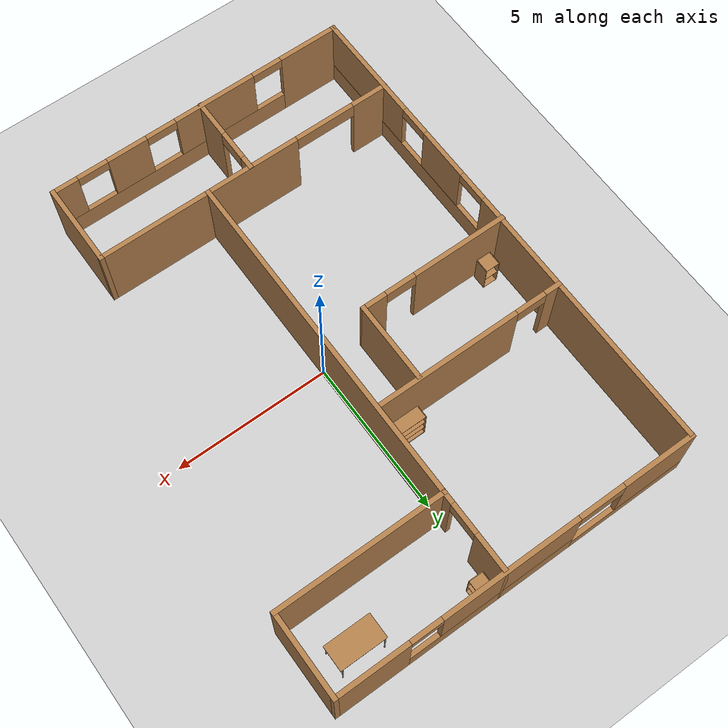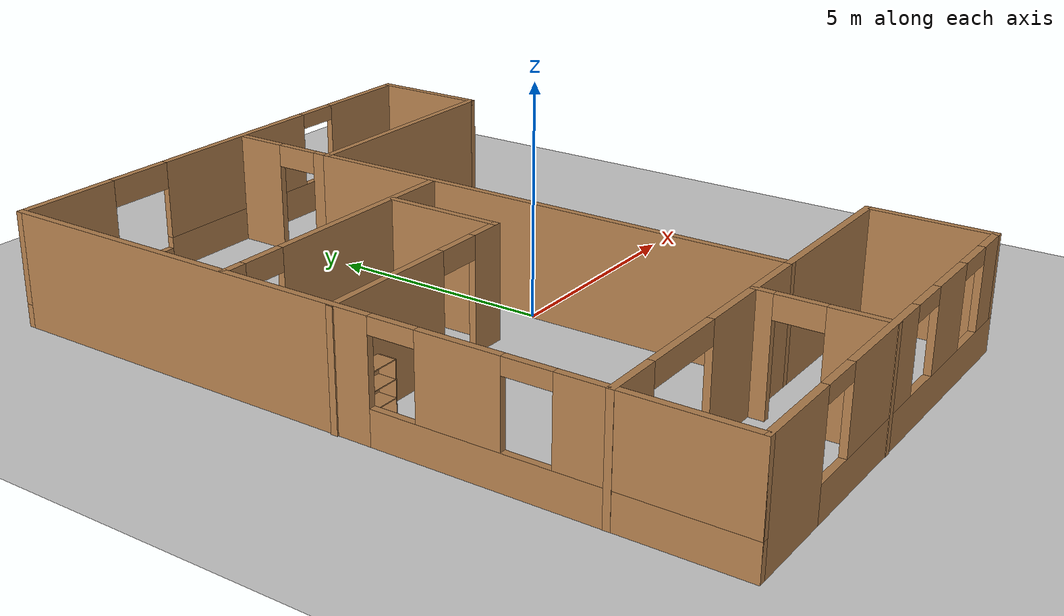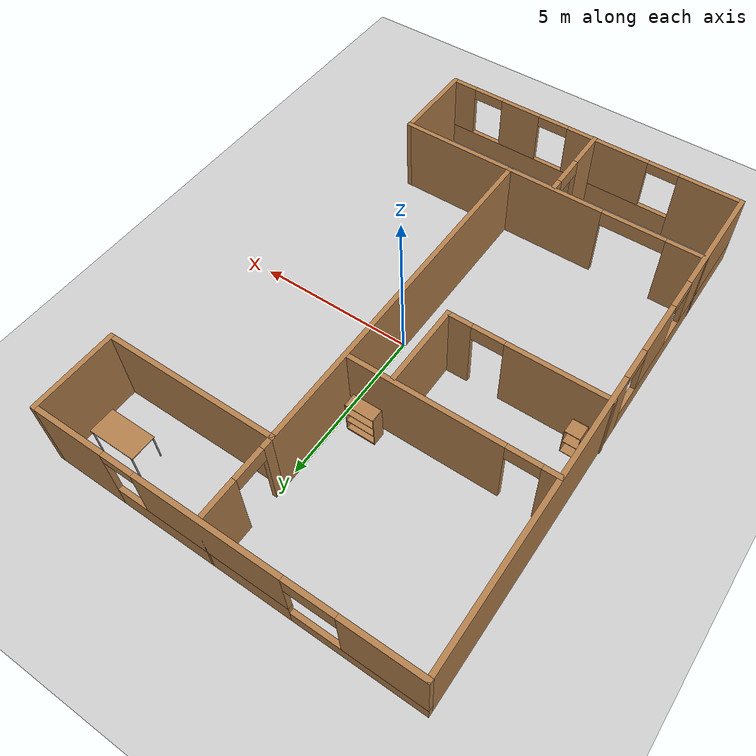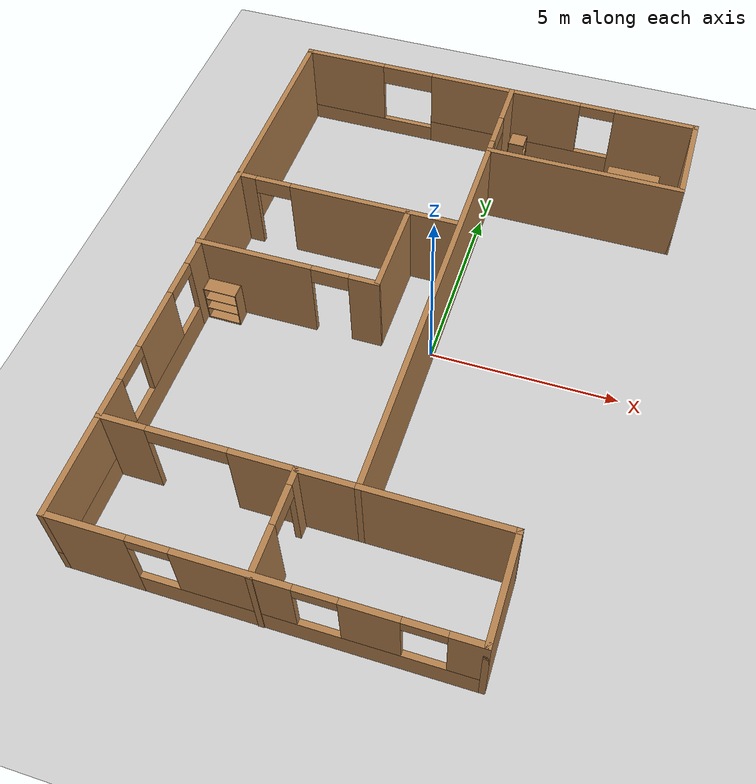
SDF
<sdf version="1.6">
 <world name="default">
  <model name="ground_plane">
   <static>1</static>
   <link name="link">
    <collision name="collision">
     <geometry><plane><normal>0 0 1</normal><size>100 100</size></plane></geometry>
     <surface><friction><ode><mu>100</mu><mu2>50</mu2></ode></friction></surface>
    </collision>
    <visual name="visual">
     <cast_shadows>0</cast_shadows>
     <geometry><plane><normal>0 0 1</normal><size>100 100</size></plane></geometry>
     <material>
      <script><uri>file://media/materials/scripts/gazebo.material</uri><name>Gazebo/Grey</name></script>
     </material>
    </visual>
   </link>
  </model>
  <model name="Building">
   <pose>-0.466 -0.083499 0 0 -0 0</pose>
   <link name="Wall_35">
    <pose>-0.859 -8.1425 0 0 -0 0</pose>
    <visual name="Wall_35_Visual_0">
     <pose>-3.97971 0 1.25 0 -0 0</pose>
     <geometry><box><size>2.04059 0.15 2.5</size></box></geometry>
     <material>
      <script><uri>file://media/materials/scripts/gazebo.material</uri><name>Gazebo/Wood</name></script>
      <ambient>0.996078 0.47451 0.0196078 1</ambient>
     </material>
     <meta><layer>0</layer></meta>
    </visual>
    <collision name="Wall_35_Collision_0">
     <geometry><box><size>2.04059 0.15 2.5</size></box></geometry>
     <pose>-3.97971 0 1.25 0 -0 0</pose>
    </collision>
    <visual name="Wall_35_Visual_1">
     <pose>1.02029 0 0.375 0 -0 0</pose>
     <geometry><box><size>7.95941 0.15 0.75</size></box></geometry>
     <material>
      <script><uri>file://media/materials/scripts/gazebo.material</uri><name>Gazebo/Wood</name></script>
      <ambient>0.996078 0.47451 0.0196078 1</ambient>
     </material>
     <meta><layer>0</layer></meta>
    </visual>
    <collision name="Wall_35_Collision_1">
     <geometry><box><size>7.95941 0.15 0.75</size></box></geometry>
     <pose>1.02029 0 0.375 0 -0 0</pose>
    </collision>
    <visual name="Wall_35_Visual_2">
     <pose>-0.589488 0 1.625 0 -0 0</pose>
     <geometry><box><size>2.73985 0.15 1.75</size></box></geometry>
     <material>
      <script><uri>file://media/materials/scripts/gazebo.material</uri><name>Gazebo/Wood</name></script>
      <ambient>0.996078 0.47451 0.0196078 1</ambient>
     </material>
     <meta><layer>0</layer></meta>
    </visual>
    <collision name="Wall_35_Collision_2">
     <geometry><box><size>2.73985 0.15 1.75</size></box></geometry>
     <pose>-0.589488 0 1.625 0 -0 0</pose>
    </collision>
    <visual name="Wall_35_Visual_3">
     <pose>2.45057 0 1.625 0 -0 0</pose>
     <geometry><box><size>1.34027 0.15 1.75</size></box></geometry>
     <material>
      <script><uri>file://media/materials/scripts/gazebo.material</uri><name>Gazebo/Wood</name></script>
      <ambient>0.996078 0.47451 0.0196078 1</ambient>
     </material>
     <meta><layer>0</layer></meta>
    </visual>
    <collision name="Wall_35_Collision_3">
     <geometry><box><size>1.34027 0.15 1.75</size></box></geometry>
     <pose>2.45057 0 1.625 0 -0 0</pose>
    </collision>
    <visual name="Wall_35_Visual_4">
     <pose>4.56035 0 1.625 0 -0 0</pose>
     <geometry><box><size>0.879297 0.15 1.75</size></box></geometry>
     <material>
      <script><uri>file://media/materials/scripts/gazebo.material</uri><name>Gazebo/Wood</name></script>
      <ambient>0.996078 0.47451 0.0196078 1</ambient>
     </material>
     <meta><layer>0</layer></meta>
    </visual>
    <collision name="Wall_35_Collision_4">
     <geometry><box><size>0.879297 0.15 1.75</size></box></geometry>
     <pose>4.56035 0 1.625 0 -0 0</pose>
    </collision>
    <visual name="Wall_35_Visual_5">
     <pose>-2.45941 0 2.325 0 -0 0</pose>
     <geometry><box><size>1 0.15 0.35</size></box></geometry>
     <material>
      <script><uri>file://media/materials/scripts/gazebo.material</uri><name>Gazebo/Wood</name></script>
      <ambient>0.996078 0.47451 0.0196078 1</ambient>
     </material>
     <meta><layer>0</layer></meta>
    </visual>
    <collision name="Wall_35_Collision_5">
     <geometry><box><size>1 0.15 0.35</size></box></geometry>
     <pose>-2.45941 0 2.325 0 -0 0</pose>
    </collision>
    <visual name="Wall_35_Visual_6">
     <pose>1.28044 0 2.325 0 -0 0</pose>
     <geometry><box><size>1 0.15 0.35</size></box></geometry>
     <material>
      <script><uri>file://media/materials/scripts/gazebo.material</uri><name>Gazebo/Wood</name></script>
      <ambient>0.996078 0.47451 0.0196078 1</ambient>
     </material>
     <meta><layer>0</layer></meta>
    </visual>
    <collision name="Wall_35_Collision_6">
     <geometry><box><size>1 0.15 0.35</size></box></geometry>
     <pose>1.28044 0 2.325 0 -0 0</pose>
    </collision>
    <visual name="Wall_35_Visual_7">
     <pose>3.6207 0 2.325 0 -0 0</pose>
     <geometry><box><size>1 0.15 0.35</size></box></geometry>
     <material>
      <script><uri>file://media/materials/scripts/gazebo.material</uri><name>Gazebo/Wood</name></script>
      <ambient>0.996078 0.47451 0.0196078 1</ambient>
     </material>
     <meta><layer>0</layer></meta>
    </visual>
    <collision name="Wall_35_Collision_7">
     <geometry><box><size>1 0.15 0.35</size></box></geometry>
     <pose>3.6207 0 2.325 0 -0 0</pose>
    </collision>
   </link>
   <link name="Wall_36">
    <collision name="Wall_36_Collision">
     <geometry><box><size>2.75 0.15 2.5</size></box></geometry>
     <pose>0 0 1.25 0 -0 0</pose>
    </collision>
    <visual name="Wall_36_Visual">
     <pose>0 0 1.25 0 -0 0</pose>
     <geometry><box><size>2.75 0.15 2.5</size></box></geometry>
     <material>
      <script><uri>file://media/materials/scripts/gazebo.material</uri><name>Gazebo/Wood</name></script>
      <ambient>0.996078 0.47451 0.0196078 1</ambient>
     </material>
     <meta><layer>0</layer></meta>
    </visual>
    <pose>4.066 -6.8425 0 0 -0 1.5708</pose>
   </link>
   <link name="Wall_37">
    <collision name="Wall_37_Collision">
     <geometry><box><size>3.75 0.15 2.5</size></box></geometry>
     <pose>0 0 1.25 0 -0 0</pose>
    </collision>
    <visual name="Wall_37_Visual">
     <pose>0 0 1.25 0 -0 0</pose>
     <geometry><box><size>3.75 0.15 2.5</size></box></geometry>
     <material>
      <script><uri>file://media/materials/scripts/gazebo.material</uri><name>Gazebo/Wood</name></script>
      <ambient>0.996078 0.47451 0.0196078 1</ambient>
     </material>
     <meta><layer>0</layer></meta>
    </visual>
    <pose>2.266 -5.5425 0 0 -0 3.14159</pose>
   </link>
   <link name="Wall_38">
    <collision name="Wall_38_Collision">
     <geometry><box><size>11.25 0.15 2.5</size></box></geometry>
     <pose>0 0 1.25 0 -0 0</pose>
    </collision>
    <visual name="Wall_38_Visual">
     <pose>0 0 1.25 0 -0 0</pose>
     <geometry><box><size>11.25 0.15 2.5</size></box></geometry>
     <material>
      <script><uri>file://media/materials/scripts/gazebo.material</uri><name>Gazebo/Wood</name></script>
      <ambient>0.996078 0.47451 0.0196078 1</ambient>
     </material>
     <meta><layer>0</layer></meta>
    </visual>
    <pose>0.466 0.007499 0 0 -0 1.5708</pose>
   </link>
   <link name="Wall_39">
    <collision name="Wall_39_Collision">
     <geometry><box><size>5.5 0.15 2.5</size></box></geometry>
     <pose>0 0 1.25 0 -0 0</pose>
    </collision>
    <visual name="Wall_39_Visual">
     <pose>0 0 1.25 0 -0 0</pose>
     <geometry><box><size>5.5 0.15 2.5</size></box></geometry>
     <material>
      <script><uri>file://media/materials/scripts/gazebo.material</uri><name>Gazebo/Wood</name></script>
      <ambient>0.996078 0.47451 0.0196078 1</ambient>
     </material>
     <meta><layer>0</layer></meta>
    </visual>
    <pose>3.141 5.5575 0 0 -0 0</pose>
   </link>
   <link name="Wall_40">
    <collision name="Wall_40_Collision">
     <geometry><box><size>2.75 0.15 2.5</size></box></geometry>
     <pose>0 0 1.25 0 -0 0</pose>
    </collision>
    <visual name="Wall_40_Visual">
     <pose>0 0 1.25 0 -0 0</pose>
     <geometry><box><size>2.75 0.15 2.5</size></box></geometry>
     <material>
      <script><uri>file://media/materials/scripts/gazebo.material</uri><name>Gazebo/Wood</name></script>
      <ambient>0.996078 0.47451 0.0196078 1</ambient>
     </material>
     <meta><layer>0</layer></meta>
    </visual>
    <pose>5.816 6.8575 0 0 -0 1.5708</pose>
   </link>
   <link name="Wall_41">
    <pose>0.016 8.1575 0 0 -0 3.14159</pose>
    <visual name="Wall_41_Visual_0">
     <pose>-4.68142 0 1.25 0 -0 0</pose>
     <geometry><box><size>2.38717 0.15 2.5</size></box></geometry>
     <material>
      <script><uri>file://media/materials/scripts/gazebo.material</uri><name>Gazebo/Wood</name></script>
      <ambient>0.996078 0.47451 0.0196078 1</ambient>
     </material>
     <meta><layer>0</layer></meta>
    </visual>
    <collision name="Wall_41_Collision_0">
     <geometry><box><size>2.38717 0.15 2.5</size></box></geometry>
     <pose>-4.68142 0 1.25 0 -0 0</pose>
    </collision>
    <visual name="Wall_41_Visual_1">
     <pose>-0.76125 0 0.375 0 -0 0</pose>
     <geometry><box><size>5.45316 0.15 0.75</size></box></geometry>
     <material>
      <script><uri>file://media/materials/scripts/gazebo.material</uri><name>Gazebo/Wood</name></script>
      <ambient>0.996078 0.47451 0.0196078 1</ambient>
     </material>
     <meta><layer>0</layer></meta>
    </visual>
    <collision name="Wall_41_Collision_1">
     <geometry><box><size>5.45316 0.15 0.75</size></box></geometry>
     <pose>-0.76125 0 0.375 0 -0 0</pose>
    </collision>
    <visual name="Wall_41_Visual_2">
     <pose>3.92016 0 0.25 0 -0 0</pose>
     <geometry><box><size>3.90967 0.15 0.5</size></box></geometry>
     <material>
      <script><uri>file://media/materials/scripts/gazebo.material</uri><name>Gazebo/Wood</name></script>
      <ambient>0.996078 0.47451 0.0196078 1</ambient>
     </material>
     <meta><layer>0</layer></meta>
    </visual>
    <collision name="Wall_41_Collision_2">
     <geometry><box><size>3.90967 0.15 0.5</size></box></geometry>
     <pose>3.92016 0 0.25 0 -0 0</pose>
    </collision>
    <visual name="Wall_41_Visual_3">
     <pose>4.67016 0 1.5 0 -0 0</pose>
     <geometry><box><size>2.40967 0.15 2</size></box></geometry>
     <material>
      <script><uri>file://media/materials/scripts/gazebo.material</uri><name>Gazebo/Wood</name></script>
      <ambient>0.996078 0.47451 0.0196078 1</ambient>
     </material>
     <meta><layer>0</layer></meta>
    </visual>
    <collision name="Wall_41_Collision_3">
     <geometry><box><size>2.40967 0.15 2</size></box></geometry>
     <pose>4.67016 0 1.5 0 -0 0</pose>
    </collision>
    <visual name="Wall_41_Visual_4">
     <pose>-0.26125 0 1.625 0 -0 0</pose>
     <geometry><box><size>4.45316 0.15 1.75</size></box></geometry>
     <material>
      <script><uri>file://media/materials/scripts/gazebo.material</uri><name>Gazebo/Wood</name></script>
      <ambient>0.996078 0.47451 0.0196078 1</ambient>
     </material>
     <meta><layer>0</layer></meta>
    </visual>
    <collision name="Wall_41_Collision_4">
     <geometry><box><size>4.45316 0.15 1.75</size></box></geometry>
     <pose>-0.26125 0 1.625 0 -0 0</pose>
    </collision>
    <visual name="Wall_41_Visual_5">
     <pose>2.71533 0 2.2 0 -0 0</pose>
     <geometry><box><size>1.5 0.15 0.6</size></box></geometry>
     <material>
      <script><uri>file://media/materials/scripts/gazebo.material</uri><name>Gazebo/Wood</name></script>
      <ambient>0.996078 0.47451 0.0196078 1</ambient>
     </material>
     <meta><layer>0</layer></meta>
    </visual>
    <collision name="Wall_41_Collision_5">
     <geometry><box><size>1.5 0.15 0.6</size></box></geometry>
     <pose>2.71533 0 2.2 0 -0 0</pose>
    </collision>
    <visual name="Wall_41_Visual_6">
     <pose>-2.98783 0 2.325 0 -0 0</pose>
     <geometry><box><size>1 0.15 0.35</size></box></geometry>
     <material>
      <script><uri>file://media/materials/scripts/gazebo.material</uri><name>Gazebo/Wood</name></script>
      <ambient>0.996078 0.47451 0.0196078 1</ambient>
     </material>
     <meta><layer>0</layer></meta>
    </visual>
    <collision name="Wall_41_Collision_6">
     <geometry><box><size>1 0.15 0.35</size></box></geometry>
     <pose>-2.98783 0 2.325 0 -0 0</pose>
    </collision>
   </link>
   <link name="Wall_42">
    <pose>-5.784 0.007499 0 0 -0 -1.5708</pose>
    <visual name="Wall_42_Visual_0">
     <pose>-3.729 0 1.25 0 -0 0</pose>
     <geometry><box><size>8.992 0.15 2.5</size></box></geometry>
     <material>
      <script><uri>file://media/materials/scripts/gazebo.material</uri><name>Gazebo/Wood</name></script>
      <ambient>0.996078 0.47451 0.0196078 1</ambient>
     </material>
     <meta><layer>0</layer></meta>
    </visual>
    <collision name="Wall_42_Collision_0">
     <geometry><box><size>8.992 0.15 2.5</size></box></geometry>
     <pose>-3.729 0 1.25 0 -0 0</pose>
    </collision>
    <visual name="Wall_42_Visual_1">
     <pose>4.496 0 0.375 0 -0 0</pose>
     <geometry><box><size>7.458 0.15 0.75</size></box></geometry>
     <material>
      <script><uri>file://media/materials/scripts/gazebo.material</uri><name>Gazebo/Wood</name></script>
      <ambient>0.996078 0.47451 0.0196078 1</ambient>
     </material>
     <meta><layer>0</layer></meta>
    </visual>
    <collision name="Wall_42_Collision_1">
     <geometry><box><size>7.458 0.15 0.75</size></box></geometry>
     <pose>4.496 0 0.375 0 -0 0</pose>
    </collision>
    <visual name="Wall_42_Visual_2">
     <pose>2.63915 0 1.625 0 -0 0</pose>
     <geometry><box><size>1.7443 0.15 1.75</size></box></geometry>
     <material>
      <script><uri>file://media/materials/scripts/gazebo.material</uri><name>Gazebo/Wood</name></script>
      <ambient>0.996078 0.47451 0.0196078 1</ambient>
     </material>
     <meta><layer>0</layer></meta>
    </visual>
    <collision name="Wall_42_Collision_2">
     <geometry><box><size>1.7443 0.15 1.75</size></box></geometry>
     <pose>2.63915 0 1.625 0 -0 0</pose>
    </collision>
    <visual name="Wall_42_Visual_3">
     <pose>6.36815 0 1.625 0 -0 0</pose>
     <geometry><box><size>3.7137 0.15 1.75</size></box></geometry>
     <material>
      <script><uri>file://media/materials/scripts/gazebo.material</uri><name>Gazebo/Wood</name></script>
      <ambient>0.996078 0.47451 0.0196078 1</ambient>
     </material>
     <meta><layer>0</layer></meta>
    </visual>
    <collision name="Wall_42_Collision_3">
     <geometry><box><size>3.7137 0.15 1.75</size></box></geometry>
     <pose>6.36815 0 1.625 0 -0 0</pose>
    </collision>
    <visual name="Wall_42_Visual_4">
     <pose>1.267 0 2.325 0 -0 0</pose>
     <geometry><box><size>1 0.15 0.35</size></box></geometry>
     <material>
      <script><uri>file://media/materials/scripts/gazebo.material</uri><name>Gazebo/Wood</name></script>
      <ambient>0.996078 0.47451 0.0196078 1</ambient>
     </material>
     <meta><layer>0</layer></meta>
    </visual>
    <collision name="Wall_42_Collision_4">
     <geometry><box><size>1 0.15 0.35</size></box></geometry>
     <pose>1.267 0 2.325 0 -0 0</pose>
    </collision>
    <visual name="Wall_42_Visual_5">
     <pose>4.0113 0 2.325 0 -0 0</pose>
     <geometry><box><size>1 0.15 0.35</size></box></geometry>
     <material>
      <script><uri>file://media/materials/scripts/gazebo.material</uri><name>Gazebo/Wood</name></script>
      <ambient>0.996078 0.47451 0.0196078 1</ambient>
     </material>
     <meta><layer>0</layer></meta>
    </visual>
    <collision name="Wall_42_Collision_5">
     <geometry><box><size>1 0.15 0.35</size></box></geometry>
     <pose>4.0113 0 2.325 0 -0 0</pose>
    </collision>
   </link>
   <link name="Wall_44">
    <pose>0.466 6.8575 0 0 -0 1.5708</pose>
    <visual name="Wall_44_Visual_0">
     <pose>-1.15301 0 1.25 0 -0 0</pose>
     <geometry><box><size>0.443977 0.15 2.5</size></box></geometry>
     <material>
      <script><uri>file://media/materials/scripts/gazebo.material</uri><name>Gazebo/Wood</name></script>
      <ambient>0.996078 0.47451 0.0196078 1</ambient>
     </material>
     <meta><layer>0</layer></meta>
    </visual>
    <collision name="Wall_44_Collision_0">
     <geometry><box><size>0.443977 0.15 2.5</size></box></geometry>
     <pose>-1.15301 0 1.25 0 -0 0</pose>
    </collision>
    <visual name="Wall_44_Visual_1">
     <pose>0.721988 0 1.25 0 -0 0</pose>
     <geometry><box><size>1.30602 0.15 2.5</size></box></geometry>
     <material>
      <script><uri>file://media/materials/scripts/gazebo.material</uri><name>Gazebo/Wood</name></script>
      <ambient>0.996078 0.47451 0.0196078 1</ambient>
     </material>
     <meta><layer>0</layer></meta>
    </visual>
    <collision name="Wall_44_Collision_1">
     <geometry><box><size>1.30602 0.15 2.5</size></box></geometry>
     <pose>0.721988 0 1.25 0 -0 0</pose>
    </collision>
    <visual name="Wall_44_Visual_2">
     <pose>-0.431023 0 2.25 0 -0 0</pose>
     <geometry><box><size>1 0.15 0.5</size></box></geometry>
     <material>
      <script><uri>file://media/materials/scripts/gazebo.material</uri><name>Gazebo/Wood</name></script>
      <ambient>0.996078 0.47451 0.0196078 1</ambient>
     </material>
     <meta><layer>0</layer></meta>
    </visual>
    <collision name="Wall_44_Collision_2">
     <geometry><box><size>1 0.15 0.5</size></box></geometry>
     <pose>-0.431023 0 2.25 0 -0 0</pose>
    </collision>
   </link>
   <link name="Wall_46">
    <pose>-2.733 2.6255 0 0 -0 0</pose>
    <visual name="Wall_46_Visual_0">
     <pose>-2.84077 0 1.25 0 -0 0</pose>
     <geometry><box><size>0.56845 0.15 2.5</size></box></geometry>
     <material>
      <script><uri>file://media/materials/scripts/gazebo.material</uri><name>Gazebo/Wood</name></script>
      <ambient>0.996078 0.47451 0.0196078 1</ambient>
     </material>
     <meta><layer>0</layer></meta>
    </visual>
    <collision name="Wall_46_Collision_0">
     <geometry><box><size>0.56845 0.15 2.5</size></box></geometry>
     <pose>-2.84077 0 1.25 0 -0 0</pose>
    </collision>
    <visual name="Wall_46_Visual_1">
     <pose>0.784225 0 1.25 0 -0 0</pose>
     <geometry><box><size>4.68155 0.15 2.5</size></box></geometry>
     <material>
      <script><uri>file://media/materials/scripts/gazebo.material</uri><name>Gazebo/Wood</name></script>
      <ambient>0.996078 0.47451 0.0196078 1</ambient>
     </material>
     <meta><layer>0</layer></meta>
    </visual>
    <collision name="Wall_46_Collision_1">
     <geometry><box><size>4.68155 0.15 2.5</size></box></geometry>
     <pose>0.784225 0 1.25 0 -0 0</pose>
    </collision>
    <visual name="Wall_46_Visual_2">
     <pose>-2.05655 0 2.25 0 -0 0</pose>
     <geometry><box><size>1 0.15 0.5</size></box></geometry>
     <material>
      <script><uri>file://media/materials/scripts/gazebo.material</uri><name>Gazebo/Wood</name></script>
      <ambient>0.996078 0.47451 0.0196078 1</ambient>
     </material>
     <meta><layer>0</layer></meta>
    </visual>
    <collision name="Wall_46_Collision_2">
     <geometry><box><size>1 0.15 0.5</size></box></geometry>
     <pose>-2.05655 0 2.25 0 -0 0</pose>
    </collision>
   </link>
   <link name="Wall_48">
    <pose>-3.391 0.046499 0 0 -0 0</pose>
    <visual name="Wall_48_Visual_0">
     <pose>-0.915348 0 1.25 0 -0 0</pose>
     <geometry><box><size>3.1693 0.15 2.5</size></box></geometry>
     <material>
      <script><uri>file://media/materials/scripts/gazebo.material</uri><name>Gazebo/Wood</name></script>
      <ambient>0.996078 0.47451 0.0196078 1</ambient>
     </material>
     <meta><layer>0</layer></meta>
    </visual>
    <collision name="Wall_48_Collision_0">
     <geometry><box><size>3.1693 0.15 2.5</size></box></geometry>
     <pose>-0.915348 0 1.25 0 -0 0</pose>
    </collision>
    <visual name="Wall_48_Visual_1">
     <pose>2.08465 0 1.25 0 -0 0</pose>
     <geometry><box><size>0.830696 0.15 2.5</size></box></geometry>
     <material>
      <script><uri>file://media/materials/scripts/gazebo.material</uri><name>Gazebo/Wood</name></script>
      <ambient>0.996078 0.47451 0.0196078 1</ambient>
     </material>
     <meta><layer>0</layer></meta>
    </visual>
    <collision name="Wall_48_Collision_1">
     <geometry><box><size>0.830696 0.15 2.5</size></box></geometry>
     <pose>2.08465 0 1.25 0 -0 0</pose>
    </collision>
    <visual name="Wall_48_Visual_2">
     <pose>1.1693 0 2.25 0 -0 0</pose>
     <geometry><box><size>1 0.15 0.5</size></box></geometry>
     <material>
      <script><uri>file://media/materials/scripts/gazebo.material</uri><name>Gazebo/Wood</name></script>
      <ambient>0.996078 0.47451 0.0196078 1</ambient>
     </material>
     <meta><layer>0</layer></meta>
    </visual>
    <collision name="Wall_48_Collision_2">
     <geometry><box><size>1 0.15 0.5</size></box></geometry>
     <pose>1.1693 0 2.25 0 -0 0</pose>
    </collision>
   </link>
   <link name="Wall_49">
    <collision name="Wall_49_Collision">
     <geometry><box><size>2.66373 0.15 2.5</size></box></geometry>
     <pose>0 0 1.25 0 -0 0</pose>
    </collision>
    <visual name="Wall_49_Visual">
     <pose>0 0 1.25 0 -0 0</pose>
     <geometry><box><size>2.66373 0.15 2.5</size></box></geometry>
     <material>
      <script><uri>file://media/materials/scripts/gazebo.material</uri><name>Gazebo/Wood</name></script>
      <ambient>0.996078 0.47451 0.0196078 1</ambient>
     </material>
     <meta><layer>0</layer></meta>
    </visual>
    <pose>-0.964 1.3035 0 0 -0 1.5692</pose>
   </link>
   <link name="Wall_51">
    <pose>-2.6615 -5.5425 0 0 -0 0</pose>
    <visual name="Wall_51_Visual_0">
     <pose>-2.57774 0 1.25 0 -0 0</pose>
     <geometry><box><size>1.24958 0.15 2.5</size></box></geometry>
     <material>
      <script><uri>file://media/materials/scripts/gazebo.material</uri><name>Gazebo/Wood</name></script>
      <ambient>0.996078 0.47451 0.0196078 1</ambient>
     </material>
     <meta><layer>0</layer></meta>
    </visual>
    <collision name="Wall_51_Collision_0">
     <geometry><box><size>1.24958 0.15 2.5</size></box></geometry>
     <pose>-2.57774 0 1.25 0 -0 0</pose>
    </collision>
    <visual name="Wall_51_Visual_1">
     <pose>1.62479 0 1.25 0 -0 0</pose>
     <geometry><box><size>3.15547 0.15 2.5</size></box></geometry>
     <material>
      <script><uri>file://media/materials/scripts/gazebo.material</uri><name>Gazebo/Wood</name></script>
      <ambient>0.996078 0.47451 0.0196078 1</ambient>
     </material>
     <meta><layer>0</layer></meta>
    </visual>
    <collision name="Wall_51_Collision_1">
     <geometry><box><size>3.15547 0.15 2.5</size></box></geometry>
     <pose>1.62479 0 1.25 0 -0 0</pose>
    </collision>
    <visual name="Wall_51_Visual_2">
     <pose>-0.952945 0 2.25 0 -0 0</pose>
     <geometry><box><size>2 0.15 0.5</size></box></geometry>
     <material>
      <script><uri>file://media/materials/scripts/gazebo.material</uri><name>Gazebo/Wood</name></script>
      <ambient>0.996078 0.47451 0.0196078 1</ambient>
     </material>
     <meta><layer>0</layer></meta>
    </visual>
    <collision name="Wall_51_Collision_2">
     <geometry><box><size>2 0.15 0.5</size></box></geometry>
     <pose>-0.952945 0 2.25 0 -0 0</pose>
    </collision>
   </link>
   <link name="Wall_53">
    <pose>-0.99 -6.8575 0 0 -0 -1.5708</pose>
    <visual name="Wall_53_Visual_0">
     <pose>-1.14437 0 1.25 0 -0 0</pose>
     <geometry><box><size>0.461266 0.15 2.5</size></box></geometry>
     <material>
      <script><uri>file://media/materials/scripts/gazebo.material</uri><name>Gazebo/Wood</name></script>
      <ambient>0.996078 0.47451 0.0196078 1</ambient>
     </material>
     <meta><layer>0</layer></meta>
    </visual>
    <collision name="Wall_53_Collision_0">
     <geometry><box><size>0.461266 0.15 2.5</size></box></geometry>
     <pose>-1.14437 0 1.25 0 -0 0</pose>
    </collision>
    <visual name="Wall_53_Visual_1">
     <pose>0.730633 0 1.25 0 -0 0</pose>
     <geometry><box><size>1.28873 0.15 2.5</size></box></geometry>
     <material>
      <script><uri>file://media/materials/scripts/gazebo.material</uri><name>Gazebo/Wood</name></script>
      <ambient>0.996078 0.47451 0.0196078 1</ambient>
     </material>
     <meta><layer>0</layer></meta>
    </visual>
    <collision name="Wall_53_Collision_1">
     <geometry><box><size>1.28873 0.15 2.5</size></box></geometry>
     <pose>0.730633 0 1.25 0 -0 0</pose>
    </collision>
    <visual name="Wall_53_Visual_2">
     <pose>-0.413734 0 2.25 0 -0 0</pose>
     <geometry><box><size>1 0.15 0.5</size></box></geometry>
     <material>
      <script><uri>file://media/materials/scripts/gazebo.material</uri><name>Gazebo/Wood</name></script>
      <ambient>0.996078 0.47451 0.0196078 1</ambient>
     </material>
     <meta><layer>0</layer></meta>
    </visual>
    <collision name="Wall_53_Collision_2">
     <geometry><box><size>1 0.15 0.5</size></box></geometry>
     <pose>-0.413734 0 2.25 0 -0 0</pose>
    </collision>
   </link>
   <static>1</static>
  </model>
  <model name="cabinet_0">
   <static>1</static>
   <link name="cabinet_bottom_plate">
    <inertial>
     <pose>0 0 -1 0 -0 0</pose>
     <inertia><ixx>2.05</ixx><ixy>0</ixy><ixz>0</ixz><iyy>2.05</iyy><iyz>0</iyz><izz>2.05</izz></inertia>
     <mass>25</mass>
    </inertial>
    <collision name="cabinet_bottom_plate_geom">
     <pose>0 0 0.01 0 -0 0</pose>
     <geometry><box><size>0.45 0.45 0.02</size></box></geometry>
    </collision>
    <visual name="cabinet_bottom_plate_geom_visual">
     <pose>0 0 0.01 0 -0 0</pose>
     <geometry><box><size>0.45 0.45 0.02</size></box></geometry>
     <material>
      <script><uri>file://media/materials/scripts/gazebo.material</uri><name>Gazebo/Wood</name></script>
     </material>
    </visual>
    <collision name="cabinet_bottom_plate_geom_cabinet_back_plate">
     <pose>0.235 0 0.51 0 -0 0</pose>
     <geometry><box><size>0.02 0.45 1.02</size></box></geometry>
    </collision>
    <visual name="cabinet_bottom_plate_geom_cabinet_back_plate_visual">
     <pose>0.235 0 0.51 0 -0 0</pose>
     <geometry><box><size>0.02 0.45 1.02</size></box></geometry>
     <material>
      <script><uri>file://media/materials/scripts/gazebo.material</uri><name>Gazebo/Wood</name></script>
     </material>
    </visual>
    <collision name="cabinet_bottom_plate_geom_cabinet_left_plate">
     <pose>0 0.235 0.51 0 -0 0</pose>
     <geometry><box><size>0.45 0.02 1.02</size></box></geometry>
    </collision>
    <visual name="cabinet_bottom_plate_geom_cabinet_left_plate_visual">
     <pose>0 0.235 0.51 0 -0 0</pose>
     <geometry><box><size>0.45 0.02 1.02</size></box></geometry>
     <material>
      <script><uri>file://media/materials/scripts/gazebo.material</uri><name>Gazebo/Wood</name></script>
     </material>
    </visual>
    <collision name="cabinet_bottom_plate_geom_cabinet_middle_plate">
     <pose>0 0 0.51 0 -0 0</pose>
     <geometry><box><size>0.45 0.45 0.02</size></box></geometry>
    </collision>
    <visual name="cabinet_bottom_plate_geom_cabinet_middle_plate_visual">
     <pose>0 0 0.51 0 -0 0</pose>
     <geometry><box><size>0.45 0.45 0.02</size></box></geometry>
     <material>
      <script><uri>file://media/materials/scripts/gazebo.material</uri><name>Gazebo/Wood</name></script>
     </material>
    </visual>
    <collision name="cabinet_bottom_plate_geom_cabinet_right_plate">
     <pose>0 -0.235 0.51 0 -0 0</pose>
     <geometry><box><size>0.45 0.02 1.02</size></box></geometry>
    </collision>
    <visual name="cabinet_bottom_plate_geom_cabinet_right_plate_visual">
     <pose>0 -0.235 0.51 0 -0 0</pose>
     <geometry><box><size>0.45 0.02 1.02</size></box></geometry>
     <material>
      <script><uri>file://media/materials/scripts/gazebo.material</uri><name>Gazebo/Wood</name></script>
     </material>
    </visual>
    <collision name="cabinet_bottom_plate_geom_cabinet_top_plate">
     <pose>0 0 1.01 0 -0 0</pose>
     <geometry><box><size>0.45 0.45 0.02</size></box></geometry>
    </collision>
    <visual name="cabinet_bottom_plate_geom_cabinet_top_plate_visual">
     <pose>0 0 1.01 0 -0 0</pose>
     <geometry><box><size>0.45 0.45 0.02</size></box></geometry>
     <material>
      <script><uri>file://media/materials/scripts/gazebo.material</uri><name>Gazebo/Wood</name></script>
     </material>
    </visual>
   </link>
   <pose>-5.67033 0.316725 0 0 0 -1.57529</pose>
  </model>
  <model name="bookshelf">
   <static>1</static>
   <link name="link">
    <inertial><mass>1</mass></inertial>
    <collision name="back">
     <pose>0 0.005 0.6 0 -0 0</pose>
     <geometry><box><size>0.9 0.01 1.2</size></box></geometry>
    </collision>
    <visual name="visual1">
     <pose>0 0.005 0.6 0 -0 0</pose>
     <geometry><box><size>0.9 0.01 1.2</size></box></geometry>
     <material>
      <script><uri>file://media/materials/scripts/gazebo.material</uri><name>Gazebo/Wood</name></script>
     </material>
    </visual>
    <collision name="left_side">
     <pose>0.45 -0.195 0.6 0 -0 0</pose>
     <geometry><box><size>0.02 0.4 1.2</size></box></geometry>
    </collision>
    <visual name="visual2">
     <pose>0.45 -0.195 0.6 0 -0 0</pose>
     <geometry><box><size>0.02 0.4 1.2</size></box></geometry>
     <material>
      <script><uri>file://media/materials/scripts/gazebo.material</uri><name>Gazebo/Wood</name></script>
     </material>
    </visual>
    <collision name="right_side">
     <pose>-0.45 -0.195 0.6 0 -0 0</pose>
     <geometry><box><size>0.02 0.4 1.2</size></box></geometry>
    </collision>
    <visual name="visual3">
     <pose>-0.45 -0.195 0.6 0 -0 0</pose>
     <geometry><box><size>0.02 0.4 1.2</size></box></geometry>
     <material>
      <script><uri>file://media/materials/scripts/gazebo.material</uri><name>Gazebo/Wood</name></script>
     </material>
    </visual>
    <collision name="bottom">
     <pose>0 -0.195 0.03 0 -0 0</pose>
     <geometry><box><size>0.88 0.4 0.06</size></box></geometry>
    </collision>
    <visual name="visual4">
     <pose>0 -0.195 0.03 0 -0 0</pose>
     <geometry><box><size>0.88 0.4 0.06</size></box></geometry>
     <material>
      <script><uri>file://media/materials/scripts/gazebo.material</uri><name>Gazebo/Wood</name></script>
     </material>
    </visual>
    <collision name="top">
     <pose>0 -0.195 1.19 0 -0 0</pose>
     <geometry><box><size>0.88 0.4 0.02</size></box></geometry>
    </collision>
    <visual name="visual5">
     <pose>0 -0.195 1.19 0 -0 0</pose>
     <geometry><box><size>0.88 0.4 0.02</size></box></geometry>
     <material>
      <script><uri>file://media/materials/scripts/gazebo.material</uri><name>Gazebo/Wood</name></script>
     </material>
    </visual>
    <collision name="low_shelf">
     <pose>0 -0.195 0.43 0 -0 0</pose>
     <geometry><box><size>0.88 0.4 0.02</size></box></geometry>
    </collision>
    <visual name="visual6">
     <pose>0 -0.195 0.43 0 -0 0</pose>
     <geometry><box><size>0.88 0.4 0.02</size></box></geometry>
     <material>
      <script><uri>file://media/materials/scripts/gazebo.material</uri><name>Gazebo/Wood</name></script>
     </material>
    </visual>
    <collision name="high_shelf">
     <pose>0 -0.195 0.8 0 -0 0</pose>
     <geometry><box><size>0.88 0.4 0.02</size></box></geometry>
    </collision>
    <visual name="visual7">
     <pose>0 -0.195 0.8 0 -0 0</pose>
     <geometry><box><size>0.88 0.4 0.02</size></box></geometry>
     <material>
      <script><uri>file://media/materials/scripts/gazebo.material</uri><name>Gazebo/Wood</name></script>
     </material>
    </visual>
   </link>
   <pose>-5.68341 -0.169311 0 0 -0 0</pose>
  </model>
  <model name="table_1">
   <static>1</static>
   <link name="link">
    <collision name="surface">
     <pose>0 0 1 0 -0 0</pose>
     <geometry><box><size>1.5 0.8 0.03</size></box></geometry>
     <surface><friction><ode><mu>0.6</mu><mu2>0.6</mu2></ode></friction></surface>
    </collision>
    <visual name="visual1">
     <pose>0 0 1 0 -0 0</pose>
     <geometry><box><size>1.5 0.8 0.03</size></box></geometry>
     <material>
      <script><uri>file://media/materials/scripts/gazebo.material</uri><name>Gazebo/Wood</name></script>
     </material>
    </visual>
    <collision name="front_left_leg">
     <pose>0.68 0.38 0.5 0 -0 0</pose>
     <geometry><cylinder><radius>0.02</radius><length>1</length></cylinder></geometry>
    </collision>
    <visual name="front_left_leg">
     <pose>0.68 0.38 0.5 0 -0 0</pose>
     <geometry><cylinder><radius>0.02</radius><length>1</length></cylinder></geometry>
     <material>
      <script><uri>file://media/materials/scripts/gazebo.material</uri><name>Gazebo/Grey</name></script>
     </material>
    </visual>
    <collision name="front_right_leg">
     <pose>0.68 -0.38 0.5 0 -0 0</pose>
     <geometry><cylinder><radius>0.02</radius><length>1</length></cylinder></geometry>
    </collision>
    <visual name="front_right_leg">
     <pose>0.68 -0.38 0.5 0 -0 0</pose>
     <geometry><cylinder><radius>0.02</radius><length>1</length></cylinder></geometry>
     <material>
      <script><uri>file://media/materials/scripts/gazebo.material</uri><name>Gazebo/Grey</name></script>
     </material>
    </visual>
    <collision name="back_right_leg">
     <pose>-0.68 -0.38 0.5 0 -0 0</pose>
     <geometry><cylinder><radius>0.02</radius><length>1</length></cylinder></geometry>
    </collision>
    <visual name="back_right_leg">
     <pose>-0.68 -0.38 0.5 0 -0 0</pose>
     <geometry><cylinder><radius>0.02</radius><length>1</length></cylinder></geometry>
     <material>
      <script><uri>file://media/materials/scripts/gazebo.material</uri><name>Gazebo/Grey</name></script>
     </material>
    </visual>
    <collision name="back_left_leg">
     <pose>-0.68 0.38 0.5 0 -0 0</pose>
     <geometry><cylinder><radius>0.02</radius><length>1</length></cylinder></geometry>
    </collision>
    <visual name="back_left_leg">
     <pose>-0.68 0.38 0.5 0 -0 0</pose>
     <geometry><cylinder><radius>0.02</radius><length>1</length></cylinder></geometry>
     <material>
      <script><uri>file://media/materials/scripts/gazebo.material</uri><name>Gazebo/Grey</name></script>
     </material>
    </visual>
   </link>
   <pose>3.95289 7.00383 0 0 -0 0</pose>
  </model>
  <model name="cabinet_1">
   <static>1</static>
   <link name="cabinet_bottom_plate">
    <inertial>
     <pose>0 0 -1 0 -0 0</pose>
     <inertia><ixx>2.05</ixx><ixy>0</ixy><ixz>0</ixz><iyy>2.05</iyy><iyz>0</iyz><izz>2.05</izz></inertia>
     <mass>25</mass>
    </inertial>
    <collision name="cabinet_bottom_plate_geom">
     <pose>0 0 0.01 0 -0 0</pose>
     <geometry><box><size>0.45 0.45 0.02</size></box></geometry>
    </collision>
    <visual name="cabinet_bottom_plate_geom_visual">
     <pose>0 0 0.01 0 -0 0</pose>
     <geometry><box><size>0.45 0.45 0.02</size></box></geometry>
     <material>
      <script><uri>file://media/materials/scripts/gazebo.material</uri><name>Gazebo/Wood</name></script>
     </material>
    </visual>
    <collision name="cabinet_bottom_plate_geom_cabinet_back_plate">
     <pose>0.235 0 0.51 0 -0 0</pose>
     <geometry><box><size>0.02 0.45 1.02</size></box></geometry>
    </collision>
    <visual name="cabinet_bottom_plate_geom_cabinet_back_plate_visual">
     <pose>0.235 0 0.51 0 -0 0</pose>
     <geometry><box><size>0.02 0.45 1.02</size></box></geometry>
     <material>
      <script><uri>file://media/materials/scripts/gazebo.material</uri><name>Gazebo/Wood</name></script>
     </material>
    </visual>
    <collision name="cabinet_bottom_plate_geom_cabinet_left_plate">
     <pose>0 0.235 0.51 0 -0 0</pose>
     <geometry><box><size>0.45 0.02 1.02</size></box></geometry>
    </collision>
    <visual name="cabinet_bottom_plate_geom_cabinet_left_plate_visual">
     <pose>0 0.235 0.51 0 -0 0</pose>
     <geometry><box><size>0.45 0.02 1.02</size></box></geometry>
     <material>
      <script><uri>file://media/materials/scripts/gazebo.material</uri><name>Gazebo/Wood</name></script>
     </material>
    </visual>
    <collision name="cabinet_bottom_plate_geom_cabinet_middle_plate">
     <pose>0 0 0.51 0 -0 0</pose>
     <geometry><box><size>0.45 0.45 0.02</size></box></geometry>
    </collision>
    <visual name="cabinet_bottom_plate_geom_cabinet_middle_plate_visual">
     <pose>0 0 0.51 0 -0 0</pose>
     <geometry><box><size>0.45 0.45 0.02</size></box></geometry>
     <material>
      <script><uri>file://media/materials/scripts/gazebo.material</uri><name>Gazebo/Wood</name></script>
     </material>
    </visual>
    <collision name="cabinet_bottom_plate_geom_cabinet_right_plate">
     <pose>0 -0.235 0.51 0 -0 0</pose>
     <geometry><box><size>0.45 0.02 1.02</size></box></geometry>
    </collision>
    <visual name="cabinet_bottom_plate_geom_cabinet_right_plate_visual">
     <pose>0 -0.235 0.51 0 -0 0</pose>
     <geometry><box><size>0.45 0.02 1.02</size></box></geometry>
     <material>
      <script><uri>file://media/materials/scripts/gazebo.material</uri><name>Gazebo/Wood</name></script>
     </material>
    </visual>
    <collision name="cabinet_bottom_plate_geom_cabinet_top_plate">
     <pose>0 0 1.01 0 -0 0</pose>
     <geometry><box><size>0.45 0.45 0.02</size></box></geometry>
    </collision>
    <visual name="cabinet_bottom_plate_geom_cabinet_top_plate_visual">
     <pose>0 0 1.01 0 -0 0</pose>
     <geometry><box><size>0.45 0.45 0.02</size></box></geometry>
     <material>
      <script><uri>file://media/materials/scripts/gazebo.material</uri><name>Gazebo/Wood</name></script>
     </material>
    </visual>
   </link>
   <pose>0.385727 7.70655 0 0 -0 3.13032</pose>
  </model>
  <model name="bookshelf_0">
   <static>1</static>
   <link name="link">
    <inertial><mass>1</mass></inertial>
    <collision name="back">
     <pose>0 0.005 0.6 0 -0 0</pose>
     <geometry><box><size>0.9 0.01 1.2</size></box></geometry>
    </collision>
    <visual name="visual1">
     <pose>0 0.005 0.6 0 -0 0</pose>
     <geometry><box><size>0.9 0.01 1.2</size></box></geometry>
     <material>
      <script><uri>file://media/materials/scripts/gazebo.material</uri><name>Gazebo/Wood</name></script>
     </material>
    </visual>
    <collision name="left_side">
     <pose>0.45 -0.195 0.6 0 -0 0</pose>
     <geometry><box><size>0.02 0.4 1.2</size></box></geometry>
    </collision>
    <visual name="visual2">
     <pose>0.45 -0.195 0.6 0 -0 0</pose>
     <geometry><box><size>0.02 0.4 1.2</size></box></geometry>
     <material>
      <script><uri>file://media/materials/scripts/gazebo.material</uri><name>Gazebo/Wood</name></script>
     </material>
    </visual>
    <collision name="right_side">
     <pose>-0.45 -0.195 0.6 0 -0 0</pose>
     <geometry><box><size>0.02 0.4 1.2</size></box></geometry>
    </collision>
    <visual name="visual3">
     <pose>-0.45 -0.195 0.6 0 -0 0</pose>
     <geometry><box><size>0.02 0.4 1.2</size></box></geometry>
     <material>
      <script><uri>file://media/materials/scripts/gazebo.material</uri><name>Gazebo/Wood</name></script>
     </material>
    </visual>
    <collision name="bottom">
     <pose>0 -0.195 0.03 0 -0 0</pose>
     <geometry><box><size>0.88 0.4 0.06</size></box></geometry>
    </collision>
    <visual name="visual4">
     <pose>0 -0.195 0.03 0 -0 0</pose>
     <geometry><box><size>0.88 0.4 0.06</size></box></geometry>
     <material>
      <script><uri>file://media/materials/scripts/gazebo.material</uri><name>Gazebo/Wood</name></script>
     </material>
    </visual>
    <collision name="top">
     <pose>0 -0.195 1.19 0 -0 0</pose>
     <geometry><box><size>0.88 0.4 0.02</size></box></geometry>
    </collision>
    <visual name="visual5">
     <pose>0 -0.195 1.19 0 -0 0</pose>
     <geometry><box><size>0.88 0.4 0.02</size></box></geometry>
     <material>
      <script><uri>file://media/materials/scripts/gazebo.material</uri><name>Gazebo/Wood</name></script>
     </material>
    </visual>
    <collision name="low_shelf">
     <pose>0 -0.195 0.43 0 -0 0</pose>
     <geometry><box><size>0.88 0.4 0.02</size></box></geometry>
    </collision>
    <visual name="visual6">
     <pose>0 -0.195 0.43 0 -0 0</pose>
     <geometry><box><size>0.88 0.4 0.02</size></box></geometry>
     <material>
      <script><uri>file://media/materials/scripts/gazebo.material</uri><name>Gazebo/Wood</name></script>
     </material>
    </visual>
    <collision name="high_shelf">
     <pose>0 -0.195 0.8 0 -0 0</pose>
     <geometry><box><size>0.88 0.4 0.02</size></box></geometry>
    </collision>
    <visual name="visual7">
     <pose>0 -0.195 0.8 0 -0 0</pose>
     <geometry><box><size>0.88 0.4 0.02</size></box></geometry>
     <material>
      <script><uri>file://media/materials/scripts/gazebo.material</uri><name>Gazebo/Wood</name></script>
     </material>
    </visual>
   </link>
   <pose>-0.78874 2.77377 0 0 0 -3.13862</pose>
  </model>
 </world>
</sdf>
